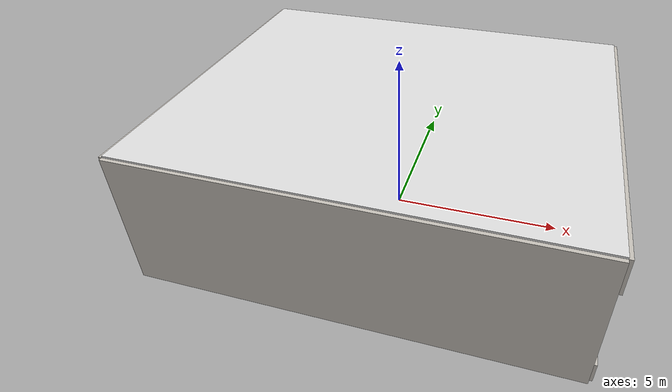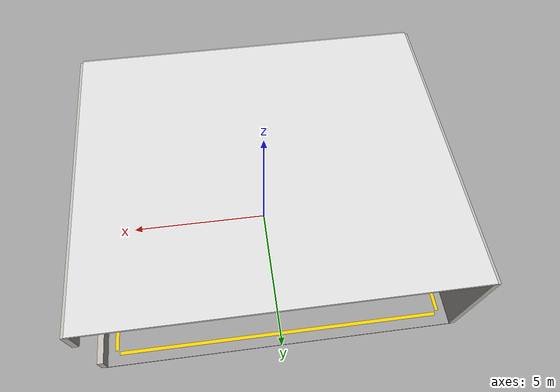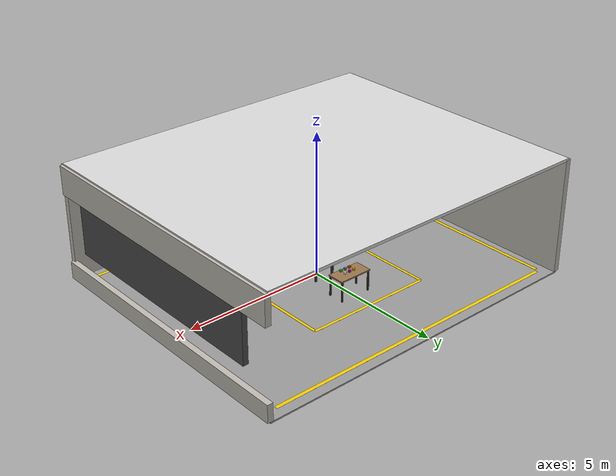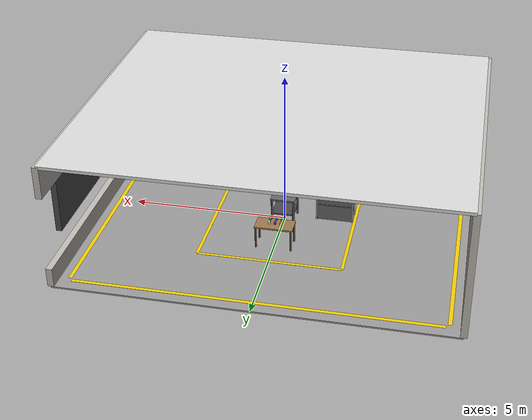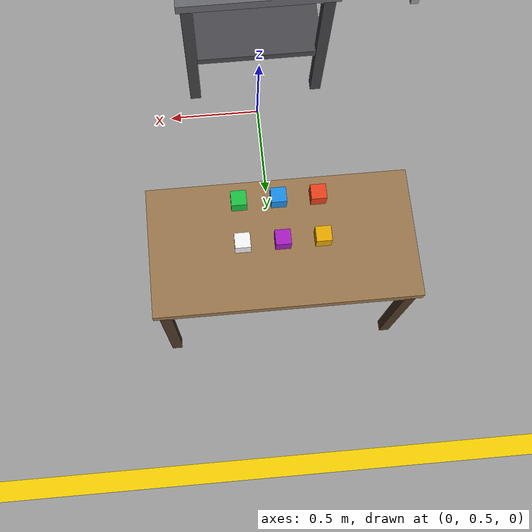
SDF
<?xml version="1.0" ?>
<sdf version="1.6">
  <world name="warehouse">

    <!-- ====================================================
         PHYSICS — Bullet Featherstone for mimic joint support
         ==================================================== -->
    <physics name="1ms" type="bullet">
      <max_step_size>0.001</max_step_size>
      <real_time_factor>1.0</real_time_factor>
      <real_time_update_rate>1000</real_time_update_rate>
    </physics>

    <!-- ====================================================
         REQUIRED PLUGINS
         ==================================================== -->
    <plugin filename="gz-sim-physics-system"
            name="gz::sim::systems::Physics"/>
    <plugin filename="gz-sim-user-commands-system"
            name="gz::sim::systems::UserCommands"/>
    <plugin filename="gz-sim-scene-broadcaster-system"
            name="gz::sim::systems::SceneBroadcaster"/>
    <plugin filename="gz-sim-contact-system"
            name="gz::sim::systems::Contact"/>

    <!-- ====================================================
         LIGHTING
         ==================================================== -->

    <!-- Primary directional sun — angled for shadows -->
    <light type="directional" name="sun">
      <cast_shadows>true</cast_shadows>
      <pose>0 0 15 0 0 0</pose>
      <diffuse>0.85 0.85 0.80 1</diffuse>
      <specular>0.3 0.3 0.3 1</specular>
      <attenuation>
        <range>1000</range>
        <constant>0.9</constant>
        <linear>0.01</linear>
        <quadratic>0.001</quadratic>
      </attenuation>
      <direction>-0.4 0.2 -0.9</direction>
    </light>

    <!-- Overhead work light 1 — above robot workspace -->
    <light type="point" name="work_light_1">
      <cast_shadows>false</cast_shadows>
      <pose>0.0 0.5 3.5 0 0 0</pose>
      <diffuse>1.0 0.98 0.92 1</diffuse>
      <specular>0.5 0.5 0.5 1</specular>
      <attenuation>
        <range>6</range>
        <constant>0.3</constant>
        <linear>0.2</linear>
        <quadratic>0.05</quadratic>
      </attenuation>
    </light>

    <!-- Overhead work light 2 — above pick table -->
    <light type="point" name="work_light_2">
      <cast_shadows>false</cast_shadows>
      <pose>0.0 1.4 3.5 0 0 0</pose>
      <diffuse>1.0 0.98 0.92 1</diffuse>
      <specular>0.5 0.5 0.5 1</specular>
      <attenuation>
        <range>5</range>
        <constant>0.3</constant>
        <linear>0.2</linear>
        <quadratic>0.05</quadratic>
      </attenuation>
    </light>

    <!-- ====================================================
         FLOOR — Concrete grey with yellow lane markings
         ==================================================== -->
    <model name="warehouse_floor">
      <static>true</static>
      <pose>0 0 0 0 0 0</pose>
      <link name="floor_link">
        <collision name="floor_collision">
          <geometry>
            <box><size>12.0 10.0 0.05</size></box>
          </geometry>
          <surface>
            <friction>
              <ode><mu>0.8</mu><mu2>0.8</mu2></ode>
            </friction>
          </surface>
        </collision>
        <visual name="floor_visual">
          <pose>0 0 -0.025 0 0 0</pose>
          <geometry>
            <box><size>12.0 10.0 0.05</size></box>
          </geometry>
          <material>
            <ambient>0.55 0.55 0.55 1</ambient>
            <diffuse>0.60 0.60 0.60 1</diffuse>
            <specular>0.1 0.1 0.1 1</specular>
          </material>
        </visual>

        <!-- Yellow lane marking — main perimeter line North -->
        <visual name="lane_N">
          <pose>0 4.6 0.001 0 0 0</pose>
          <geometry><box><size>11.0 0.12 0.001</size></box></geometry>
          <material>
            <ambient>0.95 0.80 0.0 1</ambient>
            <diffuse>0.95 0.80 0.0 1</diffuse>
          </material>
        </visual>

        <!-- Yellow lane marking — main perimeter line South -->
        <visual name="lane_S">
          <pose>0 -4.6 0.001 0 0 0</pose>
          <geometry><box><size>11.0 0.12 0.001</size></box></geometry>
          <material>
            <ambient>0.95 0.80 0.0 1</ambient>
            <diffuse>0.95 0.80 0.0 1</diffuse>
          </material>
        </visual>

        <!-- Yellow lane marking — East -->
        <visual name="lane_E">
          <pose>5.6 0 0.001 0 0 0</pose>
          <geometry><box><size>0.12 9.0 0.001</size></box></geometry>
          <material>
            <ambient>0.95 0.80 0.0 1</ambient>
            <diffuse>0.95 0.80 0.0 1</diffuse>
          </material>
        </visual>

        <!-- Yellow lane marking — West -->
        <visual name="lane_W">
          <pose>-5.6 0 0.001 0 0 0</pose>
          <geometry><box><size>0.12 9.0 0.001</size></box></geometry>
          <material>
            <ambient>0.95 0.80 0.0 1</ambient>
            <diffuse>0.95 0.80 0.0 1</diffuse>
          </material>
        </visual>

        <!-- Yellow robot work cell box marking -->
        <visual name="cell_line_N">
          <pose>0 2.5 0.001 0 0 0</pose>
          <geometry><box><size>4.5 0.10 0.001</size></box></geometry>
          <material>
            <ambient>0.95 0.80 0.0 1</ambient>
            <diffuse>0.95 0.80 0.0 1</diffuse>
          </material>
        </visual>
        <visual name="cell_line_S">
          <pose>0 -1.8 0.001 0 0 0</pose>
          <geometry><box><size>4.5 0.10 0.001</size></box></geometry>
          <material>
            <ambient>0.95 0.80 0.0 1</ambient>
            <diffuse>0.95 0.80 0.0 1</diffuse>
          </material>
        </visual>
        <visual name="cell_line_E">
          <pose>2.25 0.35 0.001 0 0 0</pose>
          <geometry><box><size>0.10 4.3 0.001</size></box></geometry>
          <material>
            <ambient>0.95 0.80 0.0 1</ambient>
            <diffuse>0.95 0.80 0.0 1</diffuse>
          </material>
        </visual>
        <visual name="cell_line_W">
          <pose>-2.25 0.35 0.001 0 0 0</pose>
          <geometry><box><size>0.10 4.3 0.001</size></box></geometry>
          <material>
            <ambient>0.95 0.80 0.0 1</ambient>
            <diffuse>0.95 0.80 0.0 1</diffuse>
          </material>
        </visual>

      </link>
    </model>

    <!-- ====================================================
         WALLS
         ==================================================== -->

    <!-- South wall — solid -->
    <model name="wall_south">
      <static>true</static>
      <pose>0 -5.0 2.0 0 0 0</pose>
      <link name="link">
        <visual name="visual">
          <geometry><box><size>12.0 0.2 4.0</size></box></geometry>
          <material>
            <ambient>0.75 0.73 0.70 1</ambient>
            <diffuse>0.75 0.73 0.70 1</diffuse>
          </material>
        </visual>
        <collision name="collision">
          <geometry><box><size>12.0 0.2 4.0</size></box></geometry>
        </collision>
      </link>
    </model>

    <!-- East wall (1 window) -->
    <model name="wall_east">
      <static>true</static>
      <pose>6.0 0 2.0 0 0 0</pose>
      <link name="link">
        <!-- Bottom section -->
        <visual name="wall_E_bot">
          <pose>0 0 -1.7 0 0 0</pose>
          <geometry><box><size>0.2 10.0 0.6</size></box></geometry>
          <material>
            <ambient>0.75 0.73 0.70 1</ambient>
            <diffuse>0.75 0.73 0.70 1</diffuse>
          </material>
        </visual>
        <collision name="wall_E_bot_col">
          <pose>0 0 -1.7 0 0 0</pose>
          <geometry><box><size>0.2 10.0 0.6</size></box></geometry>
        </collision>
        <!-- Top section -->
        <visual name="wall_E_top">
          <pose>0 0 1.5 0 0 0</pose>
          <geometry><box><size>0.2 10.0 1.0</size></box></geometry>
          <material>
            <ambient>0.75 0.73 0.70 1</ambient>
            <diffuse>0.75 0.73 0.70 1</diffuse>
          </material>
        </visual>
        <collision name="wall_E_top_col">
          <pose>0 0 1.5 0 0 0</pose>
          <geometry><box><size>0.2 10.0 1.0</size></box></geometry>
        </collision>
        <!-- Window frame -->
        <visual name="window_E_frame">
          <pose>0 0 0.2 0 0 0</pose>
          <geometry><box><size>0.18 8.0 1.8</size></box></geometry>
          <material>
            <ambient>0.3 0.3 0.3 1</ambient>
            <diffuse>0.3 0.3 0.3 1</diffuse>
          </material>
        </visual>
        <visual name="window_E_glass">
          <pose>0.01 0 0.2 0 0 0</pose>
          <geometry><box><size>0.05 7.6 1.5</size></box></geometry>
          <material>
            <ambient>0.6 0.8 0.9 0.35</ambient>
            <diffuse>0.6 0.8 0.9 0.35</diffuse>
            <specular>1.0 1.0 1.0 1</specular>
          </material>
        </visual>
      </link>
    </model>

    <!-- West wall — solid -->
    <model name="wall_west">
      <static>true</static>
      <pose>-6.0 0 2.0 0 0 0</pose>
      <link name="link">
        <visual name="visual">
          <geometry><box><size>0.2 10.0 4.0</size></box></geometry>
          <material>
            <ambient>0.75 0.73 0.70 1</ambient>
            <diffuse>0.75 0.73 0.70 1</diffuse>
          </material>
        </visual>
        <collision name="collision">
          <geometry><box><size>0.2 10.0 4.0</size></box></geometry>
        </collision>
      </link>
    </model>

    <!-- Ceiling -->
    <model name="ceiling">
      <static>true</static>
      <pose>0 0 4.0 0 0 0</pose>
      <link name="link">
        <visual name="visual">
          <geometry><box><size>12.0 10.0 0.1</size></box></geometry>
          <material>
            <ambient>0.85 0.85 0.85 1</ambient>
            <diffuse>0.85 0.85 0.85 1</diffuse>
          </material>
        </visual>
      </link>
    </model>

    <model name="robot_table">
      <static>true</static>
      <pose>0.0 0.0 0 0 0 0</pose>
      <link name="link">
        <!-- Tabletop -->
        <visual name="top_visual">
          <pose>0 0 0.875 0 0 0</pose>
          <geometry><box><size>0.80 0.80 0.05</size></box></geometry>
          <material>
            <ambient>0.35 0.35 0.38 1</ambient>
            <diffuse>0.40 0.40 0.43 1</diffuse>
            <specular>0.6 0.6 0.6 1</specular>
          </material>
        </visual>
        <collision name="top_collision">
          <pose>0 0 0.875 0 0 0</pose>
          <geometry><box><size>0.80 0.80 0.05</size></box></geometry>
        </collision>
        <!-- Leg FL -->
        <visual name="leg_FL">
          <pose> 0.35  0.35 0.425 0 0 0</pose>
          <geometry><box><size>0.06 0.06 0.85</size></box></geometry>
          <material><ambient>0.25 0.25 0.27 1</ambient><diffuse>0.25 0.25 0.27 1</diffuse></material>
        </visual>
        <collision name="leg_FL_col">
          <pose> 0.35  0.35 0.425 0 0 0</pose>
          <geometry><box><size>0.06 0.06 0.85</size></box></geometry>
        </collision>
        <!-- Leg FR -->
        <visual name="leg_FR">
          <pose> 0.35 -0.35 0.425 0 0 0</pose>
          <geometry><box><size>0.06 0.06 0.85</size></box></geometry>
          <material><ambient>0.25 0.25 0.27 1</ambient><diffuse>0.25 0.25 0.27 1</diffuse></material>
        </visual>
        <collision name="leg_FR_col">
          <pose> 0.35 -0.35 0.425 0 0 0</pose>
          <geometry><box><size>0.06 0.06 0.85</size></box></geometry>
        </collision>
        <!-- Leg BL -->
        <visual name="leg_BL">
          <pose>-0.35  0.35 0.425 0 0 0</pose>
          <geometry><box><size>0.06 0.06 0.85</size></box></geometry>
          <material><ambient>0.25 0.25 0.27 1</ambient><diffuse>0.25 0.25 0.27 1</diffuse></material>
        </visual>
        <collision name="leg_BL_col">
          <pose>-0.35  0.35 0.425 0 0 0</pose>
          <geometry><box><size>0.06 0.06 0.85</size></box></geometry>
        </collision>
        <!-- Leg BR -->
        <visual name="leg_BR">
          <pose>-0.35 -0.35 0.425 0 0 0</pose>
          <geometry><box><size>0.06 0.06 0.85</size></box></geometry>
          <material><ambient>0.25 0.25 0.27 1</ambient><diffuse>0.25 0.25 0.27 1</diffuse></material>
        </visual>
        <collision name="leg_BR_col">
          <pose>-0.35 -0.35 0.425 0 0 0</pose>
          <geometry><box><size>0.06 0.06 0.85</size></box></geometry>
        </collision>
        <!-- Cross brace -->
        <visual name="brace">
          <pose>0 0 0.35 0 0 0</pose>
          <geometry><box><size>0.72 0.72 0.04</size></box></geometry>
          <material><ambient>0.28 0.28 0.30 1</ambient><diffuse>0.28 0.28 0.30 1</diffuse></material>
        </visual>
      </link>
    </model>

    <model name="pick_table">
      <static>true</static>
      <pose>0.0 1.55 0 0 0 0</pose>
      <link name="link">
        <!-- Tabletop -->
        <visual name="top_visual">
          <pose>0 0 0.725 0 0 0</pose>
          <geometry><box><size>1.20 0.60 0.05</size></box></geometry>
          <material>
            <ambient>0.55 0.42 0.28 1</ambient>
            <diffuse>0.60 0.46 0.30 1</diffuse>
            <specular>0.2 0.2 0.2 1</specular>
          </material>
        </visual>
        <collision name="top_collision">
          <pose>0 0 0.725 0 0 0</pose>
          <geometry><box><size>1.20 0.60 0.05</size></box></geometry>
        </collision>
        <!-- Legs -->
        <visual name="leg_FL">
          <pose> 0.55  0.27 0.35 0 0 0</pose>
          <geometry><box><size>0.05 0.05 0.70</size></box></geometry>
          <material><ambient>0.3 0.22 0.14 1</ambient><diffuse>0.3 0.22 0.14 1</diffuse></material>
        </visual>
        <collision name="leg_FL_col">
          <pose> 0.55  0.27 0.35 0 0 0</pose>
          <geometry><box><size>0.05 0.05 0.70</size></box></geometry>
        </collision>
        <visual name="leg_FR">
          <pose> 0.55 -0.27 0.35 0 0 0</pose>
          <geometry><box><size>0.05 0.05 0.70</size></box></geometry>
          <material><ambient>0.3 0.22 0.14 1</ambient><diffuse>0.3 0.22 0.14 1</diffuse></material>
        </visual>
        <collision name="leg_FR_col">
          <pose> 0.55 -0.27 0.35 0 0 0</pose>
          <geometry><box><size>0.05 0.05 0.70</size></box></geometry>
        </collision>
        <visual name="leg_BL">
          <pose>-0.55  0.27 0.35 0 0 0</pose>
          <geometry><box><size>0.05 0.05 0.70</size></box></geometry>
          <material><ambient>0.3 0.22 0.14 1</ambient><diffuse>0.3 0.22 0.14 1</diffuse></material>
        </visual>
        <collision name="leg_BL_col">
          <pose>-0.55  0.27 0.35 0 0 0</pose>
          <geometry><box><size>0.05 0.05 0.70</size></box></geometry>
        </collision>
        <visual name="leg_BR">
          <pose>-0.55 -0.27 0.35 0 0 0</pose>
          <geometry><box><size>0.05 0.05 0.70</size></box></geometry>
          <material><ambient>0.3 0.22 0.14 1</ambient><diffuse>0.3 0.22 0.14 1</diffuse></material>
        </visual>
        <collision name="leg_BR_col">
          <pose>-0.55 -0.27 0.35 0 0 0</pose>
          <geometry><box><size>0.05 0.05 0.70</size></box></geometry>
        </collision>
      </link>
    </model>

    <model name="storage_rack">
      <static>true</static>
      <pose>-1.6 -0.4 0 0 0 0</pose>
      <link name="link">

        <!-- Vertical uprights -->
        <visual name="upright_FL">
          <pose> 0.58  0.23 0.9 0 0 0</pose>
          <geometry><box><size>0.05 0.05 1.80</size></box></geometry>
          <material><ambient>0.55 0.55 0.55 1</ambient><diffuse>0.60 0.60 0.60 1</diffuse></material>
        </visual>
        <collision name="upright_FL_col">
          <pose> 0.58  0.23 0.9 0 0 0</pose>
          <geometry><box><size>0.05 0.05 1.80</size></box></geometry>
        </collision>
        <visual name="upright_FR">
          <pose> 0.58 -0.23 0.9 0 0 0</pose>
          <geometry><box><size>0.05 0.05 1.80</size></box></geometry>
          <material><ambient>0.55 0.55 0.55 1</ambient><diffuse>0.60 0.60 0.60 1</diffuse></material>
        </visual>
        <collision name="upright_FR_col">
          <pose> 0.58 -0.23 0.9 0 0 0</pose>
          <geometry><box><size>0.05 0.05 1.80</size></box></geometry>
        </collision>
        <visual name="upright_BL">
          <pose>-0.58  0.23 0.9 0 0 0</pose>
          <geometry><box><size>0.05 0.05 1.80</size></box></geometry>
          <material><ambient>0.55 0.55 0.55 1</ambient><diffuse>0.60 0.60 0.60 1</diffuse></material>
        </visual>
        <collision name="upright_BL_col">
          <pose>-0.58  0.23 0.9 0 0 0</pose>
          <geometry><box><size>0.05 0.05 1.80</size></box></geometry>
        </collision>
        <visual name="upright_BR">
          <pose>-0.58 -0.23 0.9 0 0 0</pose>
          <geometry><box><size>0.05 0.05 1.80</size></box></geometry>
          <material><ambient>0.55 0.55 0.55 1</ambient><diffuse>0.60 0.60 0.60 1</diffuse></material>
        </visual>
        <collision name="upright_BR_col">
          <pose>-0.58 -0.23 0.9 0 0 0</pose>
          <geometry><box><size>0.05 0.05 1.80</size></box></geometry>
        </collision>

        <!-- Shelf 1 at z=0.55 -->
        <visual name="shelf_1_visual">
          <pose>0 0 0.55 0 0 0</pose>
          <geometry><box><size>1.18 0.48 0.03</size></box></geometry>
          <material>
            <ambient>0.45 0.45 0.45 1</ambient>
            <diffuse>0.50 0.50 0.50 1</diffuse>
            <specular>0.3 0.3 0.3 1</specular>
          </material>
        </visual>
        <collision name="shelf_1_col">
          <pose>0 0 0.55 0 0 0</pose>
          <geometry><box><size>1.18 0.48 0.03</size></box></geometry>
        </collision>

        <!-- Shelf 2 at z=1.05 -->
        <visual name="shelf_2_visual">
          <pose>0 0 1.05 0 0 0</pose>
          <geometry><box><size>1.18 0.48 0.03</size></box></geometry>
          <material>
            <ambient>0.45 0.45 0.45 1</ambient>
            <diffuse>0.50 0.50 0.50 1</diffuse>
            <specular>0.3 0.3 0.3 1</specular>
          </material>
        </visual>
        <collision name="shelf_2_col">
          <pose>0 0 1.05 0 0 0</pose>
          <geometry><box><size>1.18 0.48 0.03</size></box></geometry>
        </collision>

        <!-- Top cap bar -->
        <visual name="top_bar">
          <pose>0 0 1.775 0 0 0</pose>
          <geometry><box><size>1.18 0.48 0.05</size></box></geometry>
          <material><ambient>0.45 0.45 0.45 1</ambient><diffuse>0.50 0.50 0.50 1</diffuse></material>
        </visual>

        <!-- Back panel -->
        <visual name="back_panel">
          <pose>0 0.22 0.9 0 0 0</pose>
          <geometry><box><size>1.18 0.02 1.80</size></box></geometry>
          <material><ambient>0.40 0.40 0.42 1</ambient><diffuse>0.40 0.40 0.42 1</diffuse></material>
        </visual>
        <collision name="back_panel_col">
          <pose>0 0.22 0.9 0 0 0</pose>
          <geometry><box><size>1.18 0.02 1.80</size></box></geometry>
        </collision>

      </link>
    </model>

    <model name="box_1">
      <pose>-0.18 1.35 0.785 0 0 0</pose>
      <link name="link">
        <inertial>
          <mass>0.2</mass>
          <inertia><ixx>0.000163</ixx><ixy>0</ixy><ixz>0</ixz>
                   <iyy>0.000163</iyy><iyz>0</iyz><izz>0.000163</izz></inertia>
        </inertial>
        <collision name="collision">
          <geometry><box><size>0.07 0.07 0.07</size></box></geometry>
          <surface><friction><ode><mu>0.6</mu><mu2>0.6</mu2></ode></friction></surface>
        </collision>
        <visual name="visual">
          <geometry><box><size>0.07 0.07 0.07</size></box></geometry>
          <material>
            <ambient>0.8 0.2 0.1 1</ambient>
            <diffuse>0.9 0.25 0.1 1</diffuse>
          </material>
        </visual>
      </link>
    </model>

    <model name="box_2">
      <pose>0.0 1.35 0.785 0 0 0</pose>
      <link name="link">
        <inertial>
          <mass>0.2</mass>
          <inertia><ixx>0.000163</ixx><ixy>0</ixy><ixz>0</ixz>
                   <iyy>0.000163</iyy><iyz>0</iyz><izz>0.000163</izz></inertia>
        </inertial>
        <collision name="collision">
          <geometry><box><size>0.07 0.07 0.07</size></box></geometry>
          <surface><friction><ode><mu>0.6</mu><mu2>0.6</mu2></ode></friction></surface>
        </collision>
        <visual name="visual">
          <geometry><box><size>0.07 0.07 0.07</size></box></geometry>
          <material>
            <ambient>0.1 0.5 0.8 1</ambient>
            <diffuse>0.1 0.55 0.9 1</diffuse>
          </material>
        </visual>
      </link>
    </model>

    <model name="box_3">
      <pose>0.18 1.35 0.785 0 0 0</pose>
      <link name="link">
        <inertial>
          <mass>0.2</mass>
          <inertia><ixx>0.000163</ixx><ixy>0</ixy><ixz>0</ixz>
                   <iyy>0.000163</iyy><iyz>0</iyz><izz>0.000163</izz></inertia>
        </inertial>
        <collision name="collision">
          <geometry><box><size>0.07 0.07 0.07</size></box></geometry>
          <surface><friction><ode><mu>0.6</mu><mu2>0.6</mu2></ode></friction></surface>
        </collision>
        <visual name="visual">
          <geometry><box><size>0.07 0.07 0.07</size></box></geometry>
          <material>
            <ambient>0.1 0.7 0.2 1</ambient>
            <diffuse>0.1 0.75 0.25 1</diffuse>
          </material>
        </visual>
      </link>
    </model>

    <model name="box_4">
      <pose>-0.18 1.55 0.785 0 0 0</pose>
      <link name="link">
        <inertial>
          <mass>0.2</mass>
          <inertia><ixx>0.000163</ixx><ixy>0</ixy><ixz>0</ixz>
                   <iyy>0.000163</iyy><iyz>0</iyz><izz>0.000163</izz></inertia>
        </inertial>
        <collision name="collision">
          <geometry><box><size>0.07 0.07 0.07</size></box></geometry>
          <surface><friction><ode><mu>0.6</mu><mu2>0.6</mu2></ode></friction></surface>
        </collision>
        <visual name="visual">
          <geometry><box><size>0.07 0.07 0.07</size></box></geometry>
          <material>
            <ambient>0.8 0.6 0.0 1</ambient>
            <diffuse>0.9 0.65 0.0 1</diffuse>
          </material>
        </visual>
      </link>
    </model>

    <model name="box_5">
      <pose>0.0 1.55 0.785 0 0 0</pose>
      <link name="link">
        <inertial>
          <mass>0.2</mass>
          <inertia><ixx>0.000163</ixx><ixy>0</ixy><ixz>0</ixz>
                   <iyy>0.000163</iyy><iyz>0</iyz><izz>0.000163</izz></inertia>
        </inertial>
        <collision name="collision">
          <geometry><box><size>0.07 0.07 0.07</size></box></geometry>
          <surface><friction><ode><mu>0.6</mu><mu2>0.6</mu2></ode></friction></surface>
        </collision>
        <visual name="visual">
          <geometry><box><size>0.07 0.07 0.07</size></box></geometry>
          <material>
            <ambient>0.6 0.1 0.7 1</ambient>
            <diffuse>0.65 0.1 0.75 1</diffuse>
          </material>
        </visual>
      </link>
    </model>

    <model name="box_6">
      <pose>0.18 1.55 0.785 0 0 0</pose>
      <link name="link">
        <inertial>
          <mass>0.2</mass>
          <inertia><ixx>0.000163</ixx><ixy>0</ixy><ixz>0</ixz>
                   <iyy>0.000163</iyy><iyz>0</iyz><izz>0.000163</izz></inertia>
        </inertial>
        <collision name="collision">
          <geometry><box><size>0.07 0.07 0.07</size></box></geometry>
          <surface><friction><ode><mu>0.6</mu><mu2>0.6</mu2></ode></friction></surface>
        </collision>
        <visual name="visual">
          <geometry><box><size>0.07 0.07 0.07</size></box></geometry>
          <material>
            <ambient>0.9 0.9 0.9 1</ambient>
            <diffuse>0.95 0.95 0.95 1</diffuse>
          </material>
        </visual>
      </link>
    </model>

  </world>
</sdf>
